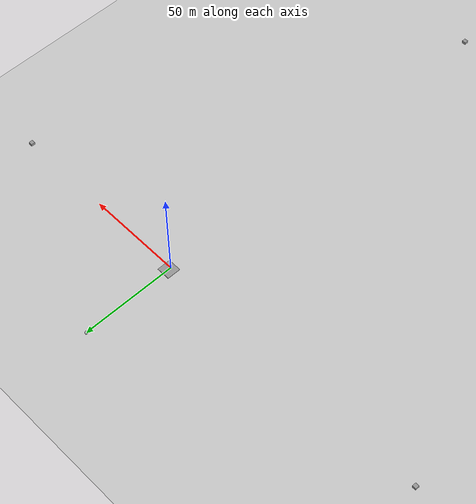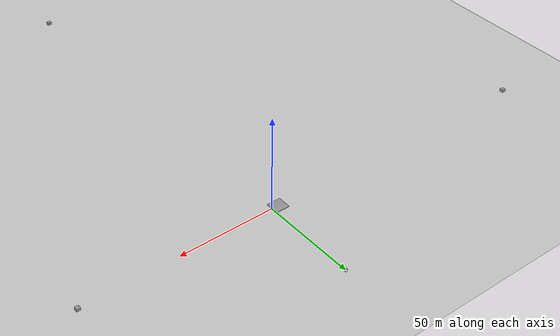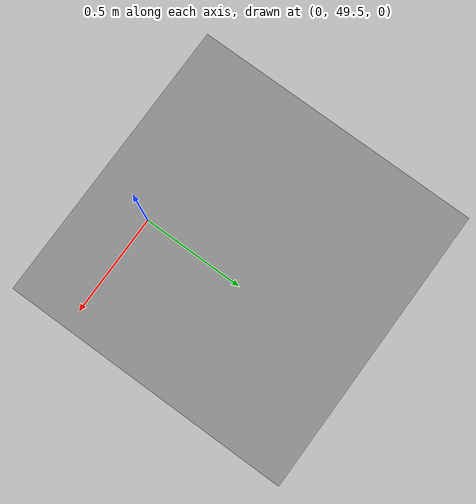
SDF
<?xml version="1.0" ?>
<sdf version="1.5">
  <world name="default">
    <!-- A global light source -->
    <include>
      <uri>model://sun</uri>
    </include>
    <!-- A ground plane -->
    <include>
      <uri>model://ground_plane</uri>
    </include>
    <!-- A unit nearest box -->
    <model name='unit_box_0_0'>
      <pose frame=''>-2.5 2.5 0 0 -0 0</pose>
      <link name='link'>
        <inertial>
          <mass>1</mass>
          <inertia>
            <ixx>0.166667</ixx>
            <ixy>0</ixy>
            <ixz>0</ixz>
            <iyy>0.166667</iyy>
            <iyz>0</iyz>
            <izz>0.166667</izz>
          </inertia>
        </inertial>
        <collision name='collision'>
          <geometry>
            <box>
              <size>1 1 3</size>
            </box>
          </geometry>
          <max_contacts>10</max_contacts>
          <surface>
            <contact>
              <ode/>
            </contact>
            <bounce/>
            <friction>
              <torsional>
                <ode/>
              </torsional>
              <ode/>
            </friction>
          </surface>
        </collision>
        <visual name='visual'>
          <geometry>
            <box>
              <size>1 1 3</size>
            </box>
          </geometry>
          <material>
            <script>
              <name>Gazebo/Grey</name>
              <uri>file://media/materials/scripts/gazebo.material</uri>
            </script>
          </material>
        </visual>
        <self_collide>0</self_collide>
        <kinematic>0</kinematic>
        <gravity>1</gravity>
      </link>
    </model>

    <!-- 50 m box -->
    <model name='unit_box_0_1'>
      <pose frame=''>0.0 50.0 0.0 0 -0 0</pose>
      <link name='link'>
        <inertial>
          <mass>1</mass>
          <inertia>
            <ixx>0.166667</ixx>
            <ixy>0</ixy>
            <ixz>0</ixz>
            <iyy>0.166667</iyy>
            <iyz>0</iyz>
            <izz>0.166667</izz>
          </inertia>
        </inertial>
        <collision name='collision'>
          <geometry>
            <box>
              <size>1 1 2</size>
            </box>
          </geometry>
          <max_contacts>10</max_contacts>
          <surface>
            <contact>
              <ode/>
            </contact>
            <bounce/>
            <friction>
              <torsional>
                <ode/>
              </torsional>
              <ode/>
            </friction>
          </surface>
        </collision>
        <visual name='visual'>
          <geometry>
            <box>
              <size>1 1 2</size>
            </box>
          </geometry>
          <material>
            <script>
              <name>Gazebo/Grey</name>
              <uri>file://media/materials/scripts/gazebo.material</uri>
            </script>
          </material>
        </visual>
        <self_collide>0</self_collide>
        <kinematic>0</kinematic>
        <gravity>1</gravity>
      </link>
    </model>
    <!-- 100 m box -->
    <model name='unit_box_0_2'>
      <pose frame=''>100.0 0.0 0.0 0 -0 0</pose>
      <link name='link'>
        <inertial>
          <mass>1</mass>
          <inertia>
            <ixx>0.166667</ixx>
            <ixy>0</ixy>
            <ixz>0</ixz>
            <iyy>0.166667</iyy>
            <iyz>0</iyz>
            <izz>0.166667</izz>
          </inertia>
        </inertial>
        <collision name='collision'>
          <geometry>
            <box>
              <size>2 2 2</size>
            </box>
          </geometry>
          <max_contacts>10</max_contacts>
          <surface>
            <contact>
              <ode/>
            </contact>
            <bounce/>
            <friction>
              <torsional>
                <ode/>
              </torsional>
              <ode/>
            </friction>
          </surface>
        </collision>
        <visual name='visual'>
          <geometry>
            <box>
              <size>2 2 2</size>
            </box>
          </geometry>
          <material>
            <script>
              <name>Gazebo/Grey</name>
              <uri>file://media/materials/scripts/gazebo.material</uri>
            </script>
          </material>
        </visual>
        <self_collide>0</self_collide>
        <kinematic>0</kinematic>
        <gravity>1</gravity>
      </link>
    </model>
    <!-- 150 m box -->
    <model name='unit_box_0_3'>
      <pose frame=''>-150.0 0.0 0.0 0 -0 0</pose>
      <link name='link'>
        <inertial>
          <mass>1</mass>
          <inertia>
            <ixx>0.166667</ixx>
            <ixy>0</ixy>
            <ixz>0</ixz>
            <iyy>0.166667</iyy>
            <iyz>0</iyz>
            <izz>0.166667</izz>
          </inertia>
        </inertial>
        <collision name='collision'>
          <geometry>
            <box>
              <size>2 2 2</size>
            </box>
          </geometry>
          <max_contacts>10</max_contacts>
          <surface>
            <contact>
              <ode/>
            </contact>
            <bounce/>
            <friction>
              <torsional>
                <ode/>
              </torsional>
              <ode/>
            </friction>
          </surface>
        </collision>
        <visual name='visual'>
          <geometry>
            <box>
              <size>2 2 2</size>
            </box>
          </geometry>
          <material>
            <script>
              <name>Gazebo/Grey</name>
              <uri>file://media/materials/scripts/gazebo.material</uri>
            </script>
          </material>
        </visual>
        <self_collide>0</self_collide>
        <kinematic>0</kinematic>
        <gravity>1</gravity>
      </link>
    </model>
    <!-- 200 m box -->
    <model name='unit_box_0_4'>
      <pose frame=''>0.0 -200.0 0.0 0 -0 0</pose>
      <link name='link'>
        <inertial>
          <mass>1</mass>
          <inertia>
            <ixx>0.166667</ixx>
            <ixy>0</ixy>
            <ixz>0</ixz>
            <iyy>0.166667</iyy>
            <iyz>0</iyz>
            <izz>0.166667</izz>
          </inertia>
        </inertial>
        <collision name='collision'>
          <geometry>
            <box>
              <size>2 2 2</size>
            </box>
          </geometry>
          <max_contacts>10</max_contacts>
          <surface>
            <contact>
              <ode/>
            </contact>
            <bounce/>
            <friction>
              <torsional>
                <ode/>
              </torsional>
              <ode/>
            </friction>
          </surface>
        </collision>
        <visual name='visual'>
          <geometry>
            <box>
              <size>2 2 2</size>
            </box>
          </geometry>
          <material>
            <script>
              <name>Gazebo/Grey</name>
              <uri>file://media/materials/scripts/gazebo.material</uri>
            </script>
          </material>
        </visual>
        <self_collide>0</self_collide>
        <kinematic>0</kinematic>
        <gravity>1</gravity>
      </link>
    </model>
    <!-- A roof -->
    <model name='roof'>
      <pose frame=''>-1.5 2.5 3.0 0 -0 0</pose>
      <link name='link'>
        <inertial>
          <mass>1</mass>
          <inertia>
            <ixx>0.166667</ixx>
            <ixy>0</ixy>
            <ixz>0</ixz>
            <iyy>0.166667</iyy>
            <iyz>0</iyz>
            <izz>0.166667</izz>
          </inertia>
        </inertial>
        <collision name='collision'>
          <geometry>
            <box>
              <size>7 7 0.3</size>
            </box>
          </geometry>
          <max_contacts>10</max_contacts>
          <surface>
            <contact>
              <ode/>
            </contact>
            <bounce/>
            <friction>
              <torsional>
                <ode/>
              </torsional>
              <ode/>
            </friction>
          </surface>
        </collision>
        <visual name='visual'>
          <geometry>
            <box>
              <size>7 7 0.3</size>
            </box>
          </geometry>
          <material>
            <script>
              <name>Gazebo/Grey</name>
              <uri>file://media/materials/scripts/gazebo.material</uri>
            </script>
          </material>
        </visual>
        <self_collide>0</self_collide>
        <kinematic>0</kinematic>
        <gravity>0</gravity>
      </link>
      <static>1</static>
    </model>
  </world>
</sdf>
